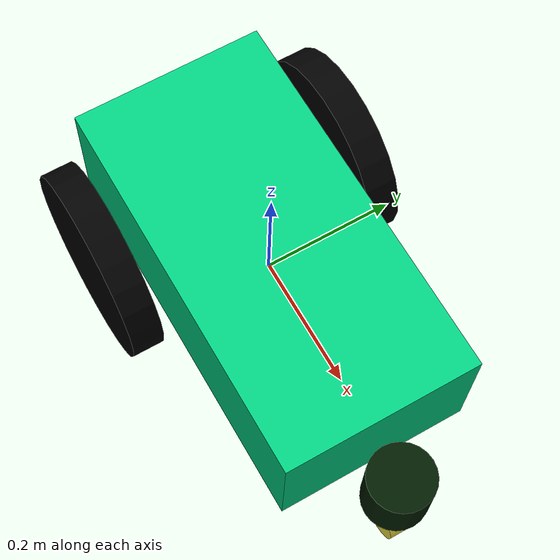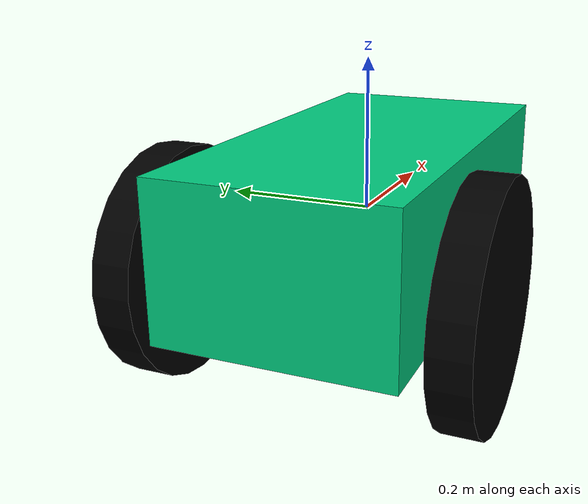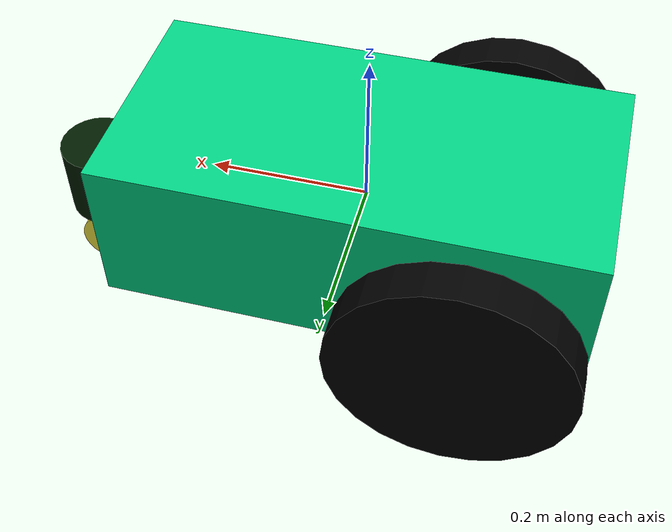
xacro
<?xml version='1.0'?>

<robot name="dd_bot" xmlns:xacro="http://www.ros.org/wiki/xacro">
  <!-- Import file with plugins for the camera, the lidar and the wheels (differential drive model for the odometry) -->
  <xacro:include filename="$(find my_robot)/urdf/ddbot_plugins.gazebo" />

  <link name="robot_footprint"></link>

  <joint name="robot_footprint_joint" type="fixed">
    <origin xyz="0 0 0" rpy="0 0 0" />
    <parent link="robot_footprint"/>
    <child link="chassis" />
  </joint>

  <link name='chassis'>
    <pose>0 0 0.2 0 0 0</pose>

    <inertial>
      <mass value="15.0"/>
      <origin xyz="0.0 0 0" rpy=" 0 0 0"/>
      <inertia
          ixx="0.1" ixy="0" ixz="0"
          iyy="0.1" iyz="0"
          izz="0.1"
      />
    </inertial>

    <collision name='chassis_collision'>
      <origin xyz="0 0 0" rpy=" 0 0 0"/>
      <geometry>
        <box size="0.6 0.3 0.2"/>
      </geometry>
    </collision>

    <visual name='chassis_visual'>
      <origin xyz="0 0 0" rpy=" 0 0 0"/>
      <geometry>
        <box size="0.6 0.3 0.2"/>
      </geometry>
      <material name="greenish">
        <color rgba="0.0 0.8 0.5 1.0"/>
      </material>
    </visual>

  </link>

  <link name="caster">
        <visual>
            <geometry>
                <cylinder radius="0.05" length="0.1"/>
            </geometry>
            <material name="green">
                <color rgba="0.0 0.1 0.0 1"/>
            </material>
        </visual>
        <collision>
            <geometry>
                <cylinder radius="0.05" length="0.1"/>
            </geometry>
        </collision>
        <inertial>
            <mass value="0.1"/>
            <inertia ixx="0.00083" ixy="0" ixz="0" iyy="0.00083" iyz="0.0" izz="0.000167"/>
        </inertial>
  </link>

  <joint name="caster_joint" type="continuous">
       <axis xyz="0.0 0.0 1"/>
       <parent link="chassis"/>
       <child link="caster"/>
       <origin xyz="0.36 0.0 -0.05" rpy="0.0 0.0 0.0"/>
  </joint>

  <link name="front_wheel">
        <visual>
            <geometry>
                <cylinder radius="0.04" length="0.05"/>
            </geometry>
        </visual>
        <collision>
            <geometry>
                <cylinder radius="0.04" length="0.05"/>
            </geometry>
        </collision>
        <inertial>
            <mass value="0.1"/>
            <inertia ixx="5.1458e-5" ixy="0" ixz="0" iyy="5.1458e-5" iyz="0.0" izz="6.125e-5"/>
        </inertial>
  </link>

  <joint name="front_wheel_joint" type="continuous">
        <axis xyz="0.0 0.0 1"/>
        <parent link="caster"/>
        <child link="front_wheel"/>
        <origin xyz="0.0 0.0 -0.11" rpy="-1.5708 0.0 0.0"/>

  </joint>

  <link name="right_wheel">

    <inertial>
      <mass value="5.0"/>
      <origin xyz="0.0 0 0" rpy=" 0 1.5707 1.5707"/>
      <inertia
          ixx="0.1" ixy="0" ixz="0"
          iyy="0.1" iyz="0"
          izz="0.1"
      />
    </inertial>

    <visual>
      <origin xyz="0 0 0" rpy="0 1.5707 1.5707"/>
      <geometry>
        <cylinder radius="0.15" length="0.05"/>
      </geometry>
      <material name="black">
	  <color rgba="0.0 0.0 0.0 1.0"/>
      </material>
    </visual>

    <collision>
      <origin xyz="0 0 0" rpy="0 1.5707 1.5707"/>
      <geometry>
	 <cylinder radius="0.15" length="0.05"/>
      </geometry>
    </collision>

  </link>

  <link name="left_wheel">

    <inertial>
      <mass value="5.0"/>
      <origin xyz="0.0 0 0" rpy=" 0 1.5707 1.5707"/>
      <inertia
          ixx="0.1" ixy="0" ixz="0"
          iyy="0.1" iyz="0"
          izz="0.1"
      />
    </inertial>

    <collision>
      <origin xyz="0 0 0" rpy="0 1.5707 1.5707"/>
      <geometry>
	<cylinder radius="0.15" length="0.05"/>
      </geometry>
    </collision>

    <visual>
      <origin xyz="0 0 0" rpy="0 1.5707 1.5707"/>
      <geometry>
	<cylinder radius="0.15" length="0.05"/>
      </geometry>
      <material name="black">
	  <color rgba="0.0 0.0 0.0 1.0"/>
      </material>
    </visual>

  </link>

  <joint type="continuous" name="right_wheel_hinge">
    <origin xyz="-0.15 0.2 -0.05" rpy="0 0 0"/>
    <child link="right_wheel"/>
    <parent link="chassis"/>
    <axis xyz="0 1 0" rpy="0 0 0"/>
    <limit effort="10000" velocity="1000"/>
    <dynamics damping="1.0" friction="1.0"/>
  </joint>

  <joint type="continuous" name="left_wheel_hinge">
    <origin xyz="-0.15 -0.2 -0.05" rpy="0 0 0"/>
    <child link="left_wheel"/>
    <parent link="chassis"/>
    <axis xyz="0 1 0" rpy="0 0 0"/>
    <limit effort="10000" velocity="1000"/>
    <dynamics damping="1.0" friction="1.0"/>
  </joint>

</robot>
